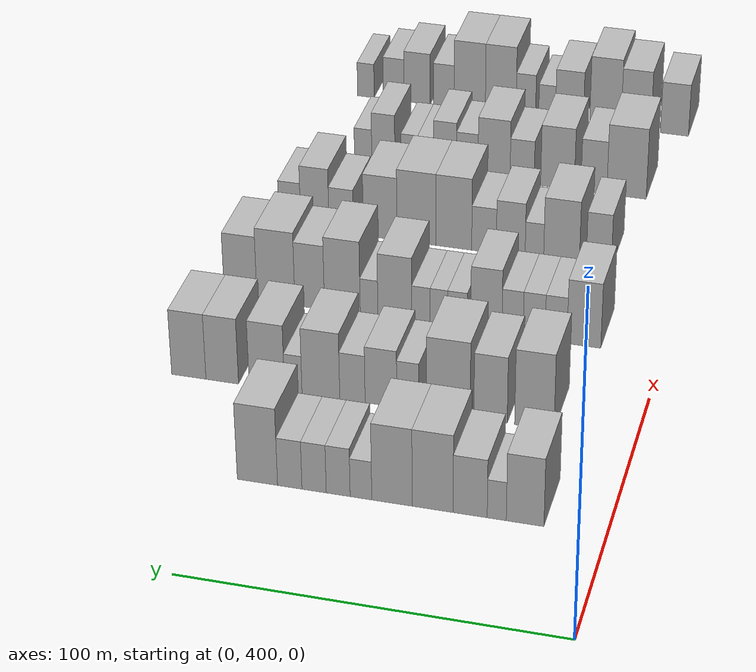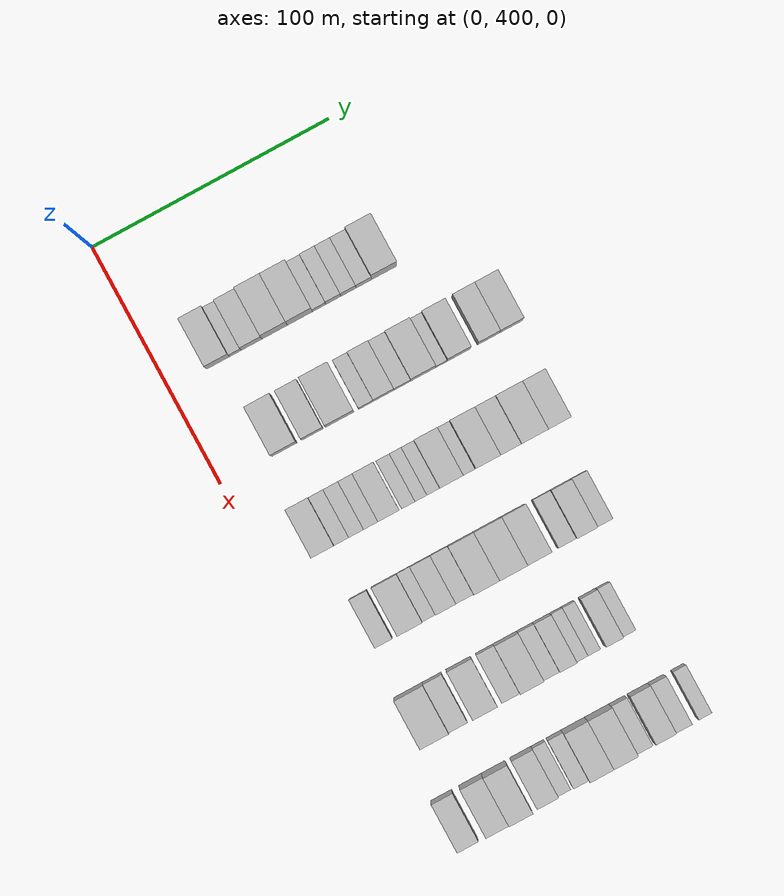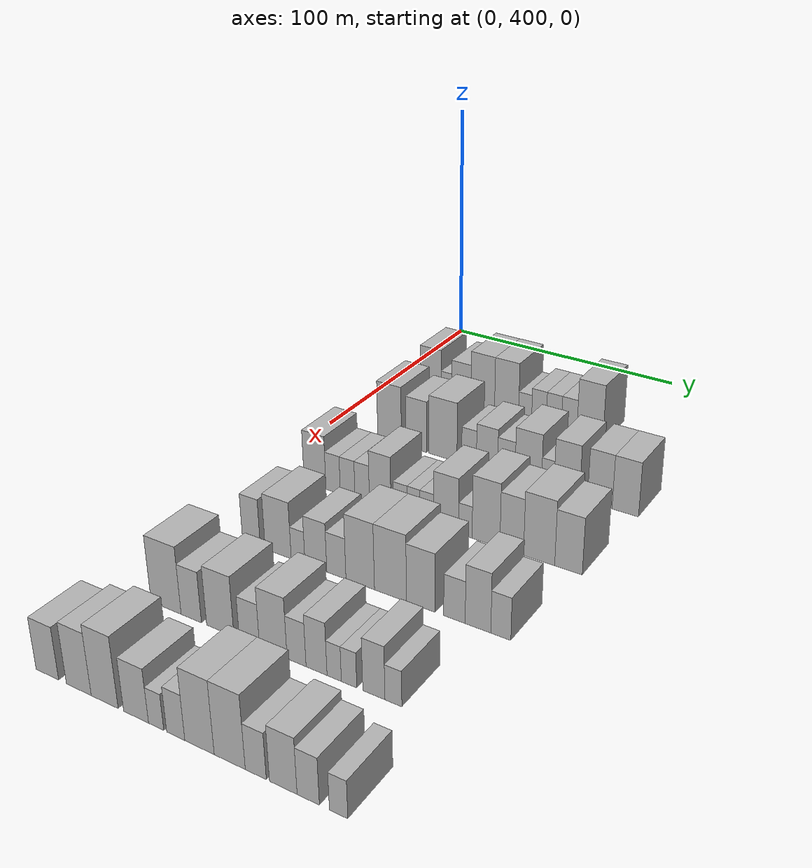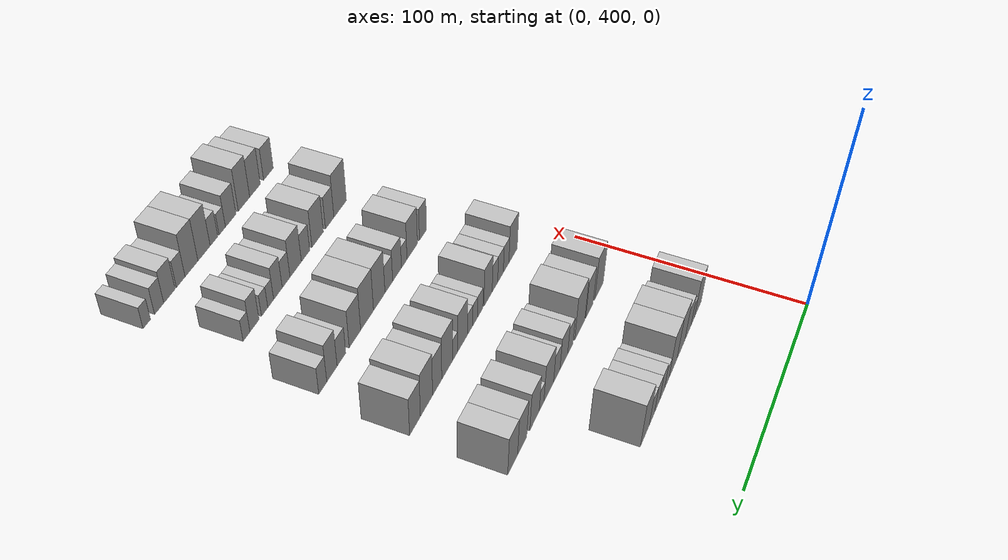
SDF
<sdf version="1.6">
 <world name="default">
  <model name="building_117">
   <static>1</static>
   <pose>50.0000 420.7810 0 0.000000 0.000000 0.000000</pose>
   <link name="link">
    <pose>0 0 10.50 0 0 0</pose>
    <collision name="collision"><geometry><box><size>20.0000 9.6259 21.0000</size></box></geometry></collision>
    <visual name="visual">
     <cast_shadows>0</cast_shadows>
     <geometry><box><size>20.0000 9.6259 21.0000</size></box></geometry>
     <material>
      <script>
       <uri>model://HANNAS_wall/materials/scripts</uri>
       <uri>model://HANNAS_wall/materials/textures</uri>
       <name>vrc/HANNAS_wall</name>
      </script>
     </material>
    </visual>
   </link>
  </model>
  <model name="building_118">
   <static>1</static>
   <pose>50.0000 428.0434 0 0.000000 0.000000 0.000000</pose>
   <link name="link">
    <pose>0 0 6.00 0 0 0</pose>
    <collision name="collision"><geometry><box><size>20.0000 4.8990 12.0000</size></box></geometry></collision>
    <visual name="visual">
     <cast_shadows>0</cast_shadows>
     <geometry><box><size>20.0000 4.8990 12.0000</size></box></geometry>
     <material>
      <script>
       <uri>model://HANNAS_wall/materials/scripts</uri>
       <uri>model://HANNAS_wall/materials/textures</uri>
       <name>vrc/HANNAS_wall</name>
      </script>
     </material>
    </visual>
   </link>
  </model>
  <model name="building_119">
   <static>1</static>
   <pose>50.0000 434.8783 0 0.000000 0.000000 0.000000</pose>
   <link name="link">
    <pose>0 0 9.00 0 0 0</pose>
    <collision name="collision"><geometry><box><size>20.0000 8.7708 18.0000</size></box></geometry></collision>
    <visual name="visual">
     <cast_shadows>0</cast_shadows>
     <geometry><box><size>20.0000 8.7708 18.0000</size></box></geometry>
     <material>
      <script>
       <uri>model://HANNAS_wall/materials/scripts</uri>
       <uri>model://HANNAS_wall/materials/textures</uri>
       <name>vrc/HANNAS_wall</name>
      </script>
     </material>
    </visual>
   </link>
  </model>
  <model name="building_120">
   <static>1</static>
   <pose>50.0000 444.5750 0 0.000000 0.000000 0.000000</pose>
   <link name="link">
    <pose>0 0 12.00 0 0 0</pose>
    <collision name="collision"><geometry><box><size>20.0000 10.6225 24.0000</size></box></geometry></collision>
    <visual name="visual">
     <cast_shadows>0</cast_shadows>
     <geometry><box><size>20.0000 10.6225 24.0000</size></box></geometry>
     <material>
      <script>
       <uri>model://HANNAS_wall/materials/scripts</uri>
       <uri>model://HANNAS_wall/materials/textures</uri>
       <name>vrc/HANNAS_wall</name>
      </script>
     </material>
    </visual>
   </link>
  </model>
  <model name="building_121">
   <static>1</static>
   <pose>50.0000 455.1604 0 0.000000 0.000000 0.000000</pose>
   <link name="link">
    <pose>0 0 12.00 0 0 0</pose>
    <collision name="collision"><geometry><box><size>20.0000 10.5483 24.0000</size></box></geometry></collision>
    <visual name="visual">
     <cast_shadows>0</cast_shadows>
     <geometry><box><size>20.0000 10.5483 24.0000</size></box></geometry>
     <material>
      <script>
       <uri>model://HANNAS_wall/materials/scripts</uri>
       <uri>model://HANNAS_wall/materials/textures</uri>
       <name>vrc/HANNAS_wall</name>
      </script>
     </material>
    </visual>
   </link>
  </model>
  <model name="building_122">
   <static>1</static>
   <pose>50.0000 463.2708 0 0.000000 0.000000 0.000000</pose>
   <link name="link">
    <pose>0 0 6.00 0 0 0</pose>
    <collision name="collision"><geometry><box><size>20.0000 5.6724 12.0000</size></box></geometry></collision>
    <visual name="visual">
     <cast_shadows>0</cast_shadows>
     <geometry><box><size>20.0000 5.6724 12.0000</size></box></geometry>
     <material>
      <script>
       <uri>model://HANNAS_wall/materials/scripts</uri>
       <uri>model://HANNAS_wall/materials/textures</uri>
       <name>vrc/HANNAS_wall</name>
      </script>
     </material>
    </visual>
   </link>
  </model>
  <model name="building_123">
   <static>1</static>
   <pose>50.0000 469.2484 0 0.000000 0.000000 0.000000</pose>
   <link name="link">
    <pose>0 0 7.50 0 0 0</pose>
    <collision name="collision"><geometry><box><size>20.0000 6.2827 15.0000</size></box></geometry></collision>
    <visual name="visual">
     <cast_shadows>0</cast_shadows>
     <geometry><box><size>20.0000 6.2827 15.0000</size></box></geometry>
     <material>
      <script>
       <uri>model://HANNAS_wall/materials/scripts</uri>
       <uri>model://HANNAS_wall/materials/textures</uri>
       <name>vrc/HANNAS_wall</name>
      </script>
     </material>
    </visual>
   </link>
  </model>
  <model name="building_124">
   <static>1</static>
   <pose>50.0000 475.5966 0 0.000000 0.000000 0.000000</pose>
   <link name="link">
    <pose>0 0 7.50 0 0 0</pose>
    <collision name="collision"><geometry><box><size>20.0000 6.4138 15.0000</size></box></geometry></collision>
    <visual name="visual">
     <cast_shadows>0</cast_shadows>
     <geometry><box><size>20.0000 6.4138 15.0000</size></box></geometry>
     <material>
      <script>
       <uri>model://HANNAS_wall/materials/scripts</uri>
       <uri>model://HANNAS_wall/materials/textures</uri>
       <name>vrc/HANNAS_wall</name>
      </script>
     </material>
    </visual>
   </link>
  </model>
  <model name="building_125">
   <static>1</static>
   <pose>50.0000 482.0374 0 0.000000 0.000000 0.000000</pose>
   <link name="link">
    <pose>0 0 7.50 0 0 0</pose>
    <collision name="collision"><geometry><box><size>20.0000 6.4678 15.0000</size></box></geometry></collision>
    <visual name="visual">
     <cast_shadows>0</cast_shadows>
     <geometry><box><size>20.0000 6.4678 15.0000</size></box></geometry>
     <material>
      <script>
       <uri>model://HANNAS_wall/materials/scripts</uri>
       <uri>model://HANNAS_wall/materials/textures</uri>
       <name>vrc/HANNAS_wall</name>
      </script>
     </material>
    </visual>
   </link>
  </model>
  <model name="building_126">
   <static>1</static>
   <pose>50.0000 490.6356 0 0.000000 0.000000 0.000000</pose>
   <link name="link">
    <pose>0 0 12.00 0 0 0</pose>
    <collision name="collision"><geometry><box><size>20.0000 10.7286 24.0000</size></box></geometry></collision>
    <visual name="visual">
     <cast_shadows>0</cast_shadows>
     <geometry><box><size>20.0000 10.7286 24.0000</size></box></geometry>
     <material>
      <script>
       <uri>model://HANNAS_wall/materials/scripts</uri>
       <uri>model://HANNAS_wall/materials/textures</uri>
       <name>vrc/HANNAS_wall</name>
      </script>
     </material>
    </visual>
   </link>
  </model>
  <model name="building_260">
   <static>1</static>
   <pose>90.0000 427.0427 0 0.000000 0.000000 0.000000</pose>
   <link name="link">
    <pose>0 0 12.00 0 0 0</pose>
    <collision name="collision"><geometry><box><size>20.0000 10.5757 24.0000</size></box></geometry></collision>
    <visual name="visual">
     <cast_shadows>0</cast_shadows>
     <geometry><box><size>20.0000 10.5757 24.0000</size></box></geometry>
     <material>
      <script>
       <uri>model://HANNAS_wall/materials/scripts</uri>
       <uri>model://HANNAS_wall/materials/textures</uri>
       <name>vrc/HANNAS_wall</name>
      </script>
     </material>
    </visual>
   </link>
  </model>
  <model name="building_261">
   <static>1</static>
   <pose>90.0000 438.8360 0 0.000000 0.000000 0.000000</pose>
   <link name="link">
    <pose>0 0 10.50 0 0 0</pose>
    <collision name="collision"><geometry><box><size>20.0000 9.0110 21.0000</size></box></geometry></collision>
    <visual name="visual">
     <cast_shadows>0</cast_shadows>
     <geometry><box><size>20.0000 9.0110 21.0000</size></box></geometry>
     <material>
      <script>
       <uri>model://HANNAS_wall/materials/scripts</uri>
       <uri>model://HANNAS_wall/materials/textures</uri>
       <name>vrc/HANNAS_wall</name>
      </script>
     </material>
    </visual>
   </link>
  </model>
  <model name="building_262">
   <static>1</static>
   <pose>90.0000 450.2954 0 0.000000 0.000000 0.000000</pose>
   <link name="link">
    <pose>0 0 12.00 0 0 0</pose>
    <collision name="collision"><geometry><box><size>20.0000 11.9078 24.0000</size></box></geometry></collision>
    <visual name="visual">
     <cast_shadows>0</cast_shadows>
     <geometry><box><size>20.0000 11.9078 24.0000</size></box></geometry>
     <material>
      <script>
       <uri>model://HANNAS_wall/materials/scripts</uri>
       <uri>model://HANNAS_wall/materials/textures</uri>
       <name>vrc/HANNAS_wall</name>
      </script>
     </material>
    </visual>
   </link>
  </model>
  <model name="building_263">
   <static>1</static>
   <pose>90.0000 461.2956 0 0.000000 0.000000 0.000000</pose>
   <link name="link">
    <pose>0 0 7.50 0 0 0</pose>
    <collision name="collision"><geometry><box><size>20.0000 6.0926 15.0000</size></box></geometry></collision>
    <visual name="visual">
     <cast_shadows>0</cast_shadows>
     <geometry><box><size>20.0000 6.0926 15.0000</size></box></geometry>
     <material>
      <script>
       <uri>model://HANNAS_wall/materials/scripts</uri>
       <uri>model://HANNAS_wall/materials/textures</uri>
       <name>vrc/HANNAS_wall</name>
      </script>
     </material>
    </visual>
   </link>
  </model>
  <model name="building_264">
   <static>1</static>
   <pose>90.0000 468.6936 0 0.000000 0.000000 0.000000</pose>
   <link name="link">
    <pose>0 0 9.00 0 0 0</pose>
    <collision name="collision"><geometry><box><size>20.0000 8.7034 18.0000</size></box></geometry></collision>
    <visual name="visual">
     <cast_shadows>0</cast_shadows>
     <geometry><box><size>20.0000 8.7034 18.0000</size></box></geometry>
     <material>
      <script>
       <uri>model://HANNAS_wall/materials/scripts</uri>
       <uri>model://HANNAS_wall/materials/textures</uri>
       <name>vrc/HANNAS_wall</name>
      </script>
     </material>
    </visual>
   </link>
  </model>
  <model name="building_265">
   <static>1</static>
   <pose>90.0000 476.5472 0 0.000000 0.000000 0.000000</pose>
   <link name="link">
    <pose>0 0 7.50 0 0 0</pose>
    <collision name="collision"><geometry><box><size>20.0000 7.0038 15.0000</size></box></geometry></collision>
    <visual name="visual">
     <cast_shadows>0</cast_shadows>
     <geometry><box><size>20.0000 7.0038 15.0000</size></box></geometry>
     <material>
      <script>
       <uri>model://HANNAS_wall/materials/scripts</uri>
       <uri>model://HANNAS_wall/materials/textures</uri>
       <name>vrc/HANNAS_wall</name>
      </script>
     </material>
    </visual>
   </link>
  </model>
  <model name="building_266">
   <static>1</static>
   <pose>90.0000 485.2889 0 0.000000 0.000000 0.000000</pose>
   <link name="link">
    <pose>0 0 10.50 0 0 0</pose>
    <collision name="collision"><geometry><box><size>20.0000 10.4795 21.0000</size></box></geometry></collision>
    <visual name="visual">
     <cast_shadows>0</cast_shadows>
     <geometry><box><size>20.0000 10.4795 21.0000</size></box></geometry>
     <material>
      <script>
       <uri>model://HANNAS_wall/materials/scripts</uri>
       <uri>model://HANNAS_wall/materials/textures</uri>
       <name>vrc/HANNAS_wall</name>
      </script>
     </material>
    </visual>
   </link>
  </model>
  <model name="building_267">
   <static>1</static>
   <pose>90.0000 492.9632 0 0.000000 0.000000 0.000000</pose>
   <link name="link">
    <pose>0 0 6.00 0 0 0</pose>
    <collision name="collision"><geometry><box><size>20.0000 4.8692 12.0000</size></box></geometry></collision>
    <visual name="visual">
     <cast_shadows>0</cast_shadows>
     <geometry><box><size>20.0000 4.8692 12.0000</size></box></geometry>
     <material>
      <script>
       <uri>model://HANNAS_wall/materials/scripts</uri>
       <uri>model://HANNAS_wall/materials/textures</uri>
       <name>vrc/HANNAS_wall</name>
      </script>
     </material>
    </visual>
   </link>
  </model>
  <model name="building_268">
   <static>1</static>
   <pose>90.0000 500.3362 0 0.000000 0.000000 0.000000</pose>
   <link name="link">
    <pose>0 0 10.50 0 0 0</pose>
    <collision name="collision"><geometry><box><size>20.0000 9.8768 21.0000</size></box></geometry></collision>
    <visual name="visual">
     <cast_shadows>0</cast_shadows>
     <geometry><box><size>20.0000 9.8768 21.0000</size></box></geometry>
     <material>
      <script>
       <uri>model://HANNAS_wall/materials/scripts</uri>
       <uri>model://HANNAS_wall/materials/textures</uri>
       <name>vrc/HANNAS_wall</name>
      </script>
     </material>
    </visual>
   </link>
  </model>
  <model name="building_269">
   <static>1</static>
   <pose>90.0000 512.8732 0 0.000000 0.000000 0.000000</pose>
   <link name="link">
    <pose>0 0 10.50 0 0 0</pose>
    <collision name="collision"><geometry><box><size>20.0000 9.1973 21.0000</size></box></geometry></collision>
    <visual name="visual">
     <cast_shadows>0</cast_shadows>
     <geometry><box><size>20.0000 9.1973 21.0000</size></box></geometry>
     <material>
      <script>
       <uri>model://HANNAS_wall/materials/scripts</uri>
       <uri>model://HANNAS_wall/materials/textures</uri>
       <name>vrc/HANNAS_wall</name>
      </script>
     </material>
    </visual>
   </link>
  </model>
  <model name="building_270">
   <static>1</static>
   <pose>90.0000 522.3245 0 0.000000 0.000000 0.000000</pose>
   <link name="link">
    <pose>0 0 10.50 0 0 0</pose>
    <collision name="collision"><geometry><box><size>20.0000 9.7052 21.0000</size></box></geometry></collision>
    <visual name="visual">
     <cast_shadows>0</cast_shadows>
     <geometry><box><size>20.0000 9.7052 21.0000</size></box></geometry>
     <material>
      <script>
       <uri>model://HANNAS_wall/materials/scripts</uri>
       <uri>model://HANNAS_wall/materials/textures</uri>
       <name>vrc/HANNAS_wall</name>
      </script>
     </material>
    </visual>
   </link>
  </model>
  <model name="building_394">
   <static>1</static>
   <pose>130.0000 421.7588 0 0.000000 0.000000 0.000000</pose>
   <link name="link">
    <pose>0 0 10.50 0 0 0</pose>
    <collision name="collision"><geometry><box><size>20.0000 9.4559 21.0000</size></box></geometry></collision>
    <visual name="visual">
     <cast_shadows>0</cast_shadows>
     <geometry><box><size>20.0000 9.4559 21.0000</size></box></geometry>
     <material>
      <script>
       <uri>model://HANNAS_wall/materials/scripts</uri>
       <uri>model://HANNAS_wall/materials/textures</uri>
       <name>vrc/HANNAS_wall</name>
      </script>
     </material>
    </visual>
   </link>
  </model>
  <model name="building_395">
   <static>1</static>
   <pose>130.0000 429.5590 0 0.000000 0.000000 0.000000</pose>
   <link name="link">
    <pose>0 0 7.50 0 0 0</pose>
    <collision name="collision"><geometry><box><size>20.0000 6.1446 15.0000</size></box></geometry></collision>
    <visual name="visual">
     <cast_shadows>0</cast_shadows>
     <geometry><box><size>20.0000 6.1446 15.0000</size></box></geometry>
     <material>
      <script>
       <uri>model://HANNAS_wall/materials/scripts</uri>
       <uri>model://HANNAS_wall/materials/textures</uri>
       <name>vrc/HANNAS_wall</name>
      </script>
     </material>
    </visual>
   </link>
  </model>
  <model name="building_396">
   <static>1</static>
   <pose>130.0000 435.7235 0 0.000000 0.000000 0.000000</pose>
   <link name="link">
    <pose>0 0 7.50 0 0 0</pose>
    <collision name="collision"><geometry><box><size>20.0000 6.1843 15.0000</size></box></geometry></collision>
    <visual name="visual">
     <cast_shadows>0</cast_shadows>
     <geometry><box><size>20.0000 6.1843 15.0000</size></box></geometry>
     <material>
      <script>
       <uri>model://HANNAS_wall/materials/scripts</uri>
       <uri>model://HANNAS_wall/materials/textures</uri>
       <name>vrc/HANNAS_wall</name>
      </script>
     </material>
    </visual>
   </link>
  </model>
  <model name="building_397">
   <static>1</static>
   <pose>130.0000 441.8187 0 0.000000 0.000000 0.000000</pose>
   <link name="link">
    <pose>0 0 7.50 0 0 0</pose>
    <collision name="collision"><geometry><box><size>20.0000 6.0060 15.0000</size></box></geometry></collision>
    <visual name="visual">
     <cast_shadows>0</cast_shadows>
     <geometry><box><size>20.0000 6.0060 15.0000</size></box></geometry>
     <material>
      <script>
       <uri>model://HANNAS_wall/materials/scripts</uri>
       <uri>model://HANNAS_wall/materials/textures</uri>
       <name>vrc/HANNAS_wall</name>
      </script>
     </material>
    </visual>
   </link>
  </model>
  <model name="building_398">
   <static>1</static>
   <pose>130.0000 449.2318 0 0.000000 0.000000 0.000000</pose>
   <link name="link">
    <pose>0 0 10.50 0 0 0</pose>
    <collision name="collision"><geometry><box><size>20.0000 8.8202 21.0000</size></box></geometry></collision>
    <visual name="visual">
     <cast_shadows>0</cast_shadows>
     <geometry><box><size>20.0000 8.8202 21.0000</size></box></geometry>
     <material>
      <script>
       <uri>model://HANNAS_wall/materials/scripts</uri>
       <uri>model://HANNAS_wall/materials/textures</uri>
       <name>vrc/HANNAS_wall</name>
      </script>
     </material>
    </visual>
   </link>
  </model>
  <model name="building_399">
   <static>1</static>
   <pose>130.0000 457.4462 0 0.000000 0.000000 0.000000</pose>
   <link name="link">
    <pose>0 0 6.00 0 0 0</pose>
    <collision name="collision"><geometry><box><size>20.0000 5.6087 12.0000</size></box></geometry></collision>
    <visual name="visual">
     <cast_shadows>0</cast_shadows>
     <geometry><box><size>20.0000 5.6087 12.0000</size></box></geometry>
     <material>
      <script>
       <uri>model://HANNAS_wall/materials/scripts</uri>
       <uri>model://HANNAS_wall/materials/textures</uri>
       <name>vrc/HANNAS_wall</name>
      </script>
     </material>
    </visual>
   </link>
  </model>
  <model name="building_400">
   <static>1</static>
   <pose>130.0000 462.7282 0 0.000000 0.000000 0.000000</pose>
   <link name="link">
    <pose>0 0 6.00 0 0 0</pose>
    <collision name="collision"><geometry><box><size>20.0000 4.9552 12.0000</size></box></geometry></collision>
    <visual name="visual">
     <cast_shadows>0</cast_shadows>
     <geometry><box><size>20.0000 4.9552 12.0000</size></box></geometry>
     <material>
      <script>
       <uri>model://HANNAS_wall/materials/scripts</uri>
       <uri>model://HANNAS_wall/materials/textures</uri>
       <name>vrc/HANNAS_wall</name>
      </script>
     </material>
    </visual>
   </link>
  </model>
  <model name="building_401">
   <static>1</static>
   <pose>130.0000 467.8478 0 0.000000 0.000000 0.000000</pose>
   <link name="link">
    <pose>0 0 6.00 0 0 0</pose>
    <collision name="collision"><geometry><box><size>20.0000 5.2841 12.0000</size></box></geometry></collision>
    <visual name="visual">
     <cast_shadows>0</cast_shadows>
     <geometry><box><size>20.0000 5.2841 12.0000</size></box></geometry>
     <material>
      <script>
       <uri>model://HANNAS_wall/materials/scripts</uri>
       <uri>model://HANNAS_wall/materials/textures</uri>
       <name>vrc/HANNAS_wall</name>
      </script>
     </material>
    </visual>
   </link>
  </model>
  <model name="building_402">
   <static>1</static>
   <pose>130.0000 475.3721 0 0.000000 0.000000 0.000000</pose>
   <link name="link">
    <pose>0 0 10.50 0 0 0</pose>
    <collision name="collision"><geometry><box><size>20.0000 9.7645 21.0000</size></box></geometry></collision>
    <visual name="visual">
     <cast_shadows>0</cast_shadows>
     <geometry><box><size>20.0000 9.7645 21.0000</size></box></geometry>
     <material>
      <script>
       <uri>model://HANNAS_wall/materials/scripts</uri>
       <uri>model://HANNAS_wall/materials/textures</uri>
       <name>vrc/HANNAS_wall</name>
      </script>
     </material>
    </visual>
   </link>
  </model>
  <model name="building_403">
   <static>1</static>
   <pose>130.0000 482.7966 0 0.000000 0.000000 0.000000</pose>
   <link name="link">
    <pose>0 0 6.00 0 0 0</pose>
    <collision name="collision"><geometry><box><size>20.0000 5.0845 12.0000</size></box></geometry></collision>
    <visual name="visual">
     <cast_shadows>0</cast_shadows>
     <geometry><box><size>20.0000 5.0845 12.0000</size></box></geometry>
     <material>
      <script>
       <uri>model://HANNAS_wall/materials/scripts</uri>
       <uri>model://HANNAS_wall/materials/textures</uri>
       <name>vrc/HANNAS_wall</name>
      </script>
     </material>
    </visual>
   </link>
  </model>
  <model name="building_404">
   <static>1</static>
   <pose>130.0000 490.5154 0 0.000000 0.000000 0.000000</pose>
   <link name="link">
    <pose>0 0 12.00 0 0 0</pose>
    <collision name="collision"><geometry><box><size>20.0000 10.3531 24.0000</size></box></geometry></collision>
    <visual name="visual">
     <cast_shadows>0</cast_shadows>
     <geometry><box><size>20.0000 10.3531 24.0000</size></box></geometry>
     <material>
      <script>
       <uri>model://HANNAS_wall/materials/scripts</uri>
       <uri>model://HANNAS_wall/materials/textures</uri>
       <name>vrc/HANNAS_wall</name>
      </script>
     </material>
    </visual>
   </link>
  </model>
  <model name="building_405">
   <static>1</static>
   <pose>130.0000 500.0058 0 0.000000 0.000000 0.000000</pose>
   <link name="link">
    <pose>0 0 10.50 0 0 0</pose>
    <collision name="collision"><geometry><box><size>20.0000 8.6278 21.0000</size></box></geometry></collision>
    <visual name="visual">
     <cast_shadows>0</cast_shadows>
     <geometry><box><size>20.0000 8.6278 21.0000</size></box></geometry>
     <material>
      <script>
       <uri>model://HANNAS_wall/materials/scripts</uri>
       <uri>model://HANNAS_wall/materials/textures</uri>
       <name>vrc/HANNAS_wall</name>
      </script>
     </material>
    </visual>
   </link>
  </model>
  <model name="building_406">
   <static>1</static>
   <pose>130.0000 509.8866 0 0.000000 0.000000 0.000000</pose>
   <link name="link">
    <pose>0 0 12.00 0 0 0</pose>
    <collision name="collision"><geometry><box><size>20.0000 11.1340 24.0000</size></box></geometry></collision>
    <visual name="visual">
     <cast_shadows>0</cast_shadows>
     <geometry><box><size>20.0000 11.1340 24.0000</size></box></geometry>
     <material>
      <script>
       <uri>model://HANNAS_wall/materials/scripts</uri>
       <uri>model://HANNAS_wall/materials/textures</uri>
       <name>vrc/HANNAS_wall</name>
      </script>
     </material>
    </visual>
   </link>
  </model>
  <model name="building_407">
   <static>1</static>
   <pose>130.0000 520.2635 0 0.000000 0.000000 0.000000</pose>
   <link name="link">
    <pose>0 0 10.50 0 0 0</pose>
    <collision name="collision"><geometry><box><size>20.0000 9.6197 21.0000</size></box></geometry></collision>
    <visual name="visual">
     <cast_shadows>0</cast_shadows>
     <geometry><box><size>20.0000 9.6197 21.0000</size></box></geometry>
     <material>
      <script>
       <uri>model://HANNAS_wall/materials/scripts</uri>
       <uri>model://HANNAS_wall/materials/textures</uri>
       <name>vrc/HANNAS_wall</name>
      </script>
     </material>
    </visual>
   </link>
  </model>
  <model name="building_533">
   <static>1</static>
   <pose>170.0000 425.3895 0 0.000000 0.000000 0.000000</pose>
   <link name="link">
    <pose>0 0 9.00 0 0 0</pose>
    <collision name="collision"><geometry><box><size>20.0000 7.3144 18.0000</size></box></geometry></collision>
    <visual name="visual">
     <cast_shadows>0</cast_shadows>
     <geometry><box><size>20.0000 7.3144 18.0000</size></box></geometry>
     <material>
      <script>
       <uri>model://HANNAS_wall/materials/scripts</uri>
       <uri>model://HANNAS_wall/materials/textures</uri>
       <name>vrc/HANNAS_wall</name>
      </script>
     </material>
    </visual>
   </link>
  </model>
  <model name="building_534">
   <static>1</static>
   <pose>170.0000 436.2900 0 0.000000 0.000000 0.000000</pose>
   <link name="link">
    <pose>0 0 10.50 0 0 0</pose>
    <collision name="collision"><geometry><box><size>20.0000 10.4865 21.0000</size></box></geometry></collision>
    <visual name="visual">
     <cast_shadows>0</cast_shadows>
     <geometry><box><size>20.0000 10.4865 21.0000</size></box></geometry>
     <material>
      <script>
       <uri>model://HANNAS_wall/materials/scripts</uri>
       <uri>model://HANNAS_wall/materials/textures</uri>
       <name>vrc/HANNAS_wall</name>
      </script>
     </material>
    </visual>
   </link>
  </model>
  <model name="building_535">
   <static>1</static>
   <pose>170.0000 444.2693 0 0.000000 0.000000 0.000000</pose>
   <link name="link">
    <pose>0 0 6.00 0 0 0</pose>
    <collision name="collision"><geometry><box><size>20.0000 5.4722 12.0000</size></box></geometry></collision>
    <visual name="visual">
     <cast_shadows>0</cast_shadows>
     <geometry><box><size>20.0000 5.4722 12.0000</size></box></geometry>
     <material>
      <script>
       <uri>model://HANNAS_wall/materials/scripts</uri>
       <uri>model://HANNAS_wall/materials/textures</uri>
       <name>vrc/HANNAS_wall</name>
      </script>
     </material>
    </visual>
   </link>
  </model>
  <model name="building_536">
   <static>1</static>
   <pose>170.0000 451.2619 0 0.000000 0.000000 0.000000</pose>
   <link name="link">
    <pose>0 0 9.00 0 0 0</pose>
    <collision name="collision"><geometry><box><size>20.0000 8.5131 18.0000</size></box></geometry></collision>
    <visual name="visual">
     <cast_shadows>0</cast_shadows>
     <geometry><box><size>20.0000 8.5131 18.0000</size></box></geometry>
     <material>
      <script>
       <uri>model://HANNAS_wall/materials/scripts</uri>
       <uri>model://HANNAS_wall/materials/textures</uri>
       <name>vrc/HANNAS_wall</name>
      </script>
     </material>
    </visual>
   </link>
  </model>
  <model name="building_537">
   <static>1</static>
   <pose>170.0000 459.1687 0 0.000000 0.000000 0.000000</pose>
   <link name="link">
    <pose>0 0 7.50 0 0 0</pose>
    <collision name="collision"><geometry><box><size>20.0000 7.3004 15.0000</size></box></geometry></collision>
    <visual name="visual">
     <cast_shadows>0</cast_shadows>
     <geometry><box><size>20.0000 7.3004 15.0000</size></box></geometry>
     <material>
      <script>
       <uri>model://HANNAS_wall/materials/scripts</uri>
       <uri>model://HANNAS_wall/materials/textures</uri>
       <name>vrc/HANNAS_wall</name>
      </script>
     </material>
    </visual>
   </link>
  </model>
  <model name="building_538">
   <static>1</static>
   <pose>170.0000 468.1682 0 0.000000 0.000000 0.000000</pose>
   <link name="link">
    <pose>0 0 12.00 0 0 0</pose>
    <collision name="collision"><geometry><box><size>20.0000 10.6986 24.0000</size></box></geometry></collision>
    <visual name="visual">
     <cast_shadows>0</cast_shadows>
     <geometry><box><size>20.0000 10.6986 24.0000</size></box></geometry>
     <material>
      <script>
       <uri>model://HANNAS_wall/materials/scripts</uri>
       <uri>model://HANNAS_wall/materials/textures</uri>
       <name>vrc/HANNAS_wall</name>
      </script>
     </material>
    </visual>
   </link>
  </model>
  <model name="building_539">
   <static>1</static>
   <pose>170.0000 479.3540 0 0.000000 0.000000 0.000000</pose>
   <link name="link">
    <pose>0 0 12.00 0 0 0</pose>
    <collision name="collision"><geometry><box><size>20.0000 11.6731 24.0000</size></box></geometry></collision>
    <visual name="visual">
     <cast_shadows>0</cast_shadows>
     <geometry><box><size>20.0000 11.6731 24.0000</size></box></geometry>
     <material>
      <script>
       <uri>model://HANNAS_wall/materials/scripts</uri>
       <uri>model://HANNAS_wall/materials/textures</uri>
       <name>vrc/HANNAS_wall</name>
      </script>
     </material>
    </visual>
   </link>
  </model>
  <model name="building_540">
   <static>1</static>
   <pose>170.0000 490.2613 0 0.000000 0.000000 0.000000</pose>
   <link name="link">
    <pose>0 0 10.50 0 0 0</pose>
    <collision name="collision"><geometry><box><size>20.0000 10.1414 21.0000</size></box></geometry></collision>
    <visual name="visual">
     <cast_shadows>0</cast_shadows>
     <geometry><box><size>20.0000 10.1414 21.0000</size></box></geometry>
     <material>
      <script>
       <uri>model://HANNAS_wall/materials/scripts</uri>
       <uri>model://HANNAS_wall/materials/textures</uri>
       <name>vrc/HANNAS_wall</name>
      </script>
     </material>
    </visual>
   </link>
  </model>
  <model name="building_541">
   <static>1</static>
   <pose>170.0000 502.0347 0 0.000000 0.000000 0.000000</pose>
   <link name="link">
    <pose>0 0 7.50 0 0 0</pose>
    <collision name="collision"><geometry><box><size>20.0000 7.4055 15.0000</size></box></geometry></collision>
    <visual name="visual">
     <cast_shadows>0</cast_shadows>
     <geometry><box><size>20.0000 7.4055 15.0000</size></box></geometry>
     <material>
      <script>
       <uri>model://HANNAS_wall/materials/scripts</uri>
       <uri>model://HANNAS_wall/materials/textures</uri>
       <name>vrc/HANNAS_wall</name>
      </script>
     </material>
    </visual>
   </link>
  </model>
  <model name="building_542">
   <static>1</static>
   <pose>170.0000 510.0636 0 0.000000 0.000000 0.000000</pose>
   <link name="link">
    <pose>0 0 10.50 0 0 0</pose>
    <collision name="collision"><geometry><box><size>20.0000 8.6522 21.0000</size></box></geometry></collision>
    <visual name="visual">
     <cast_shadows>0</cast_shadows>
     <geometry><box><size>20.0000 8.6522 21.0000</size></box></geometry>
     <material>
      <script>
       <uri>model://HANNAS_wall/materials/scripts</uri>
       <uri>model://HANNAS_wall/materials/textures</uri>
       <name>vrc/HANNAS_wall</name>
      </script>
     </material>
    </visual>
   </link>
  </model>
  <model name="building_543">
   <static>1</static>
   <pose>170.0000 517.7016 0 0.000000 0.000000 0.000000</pose>
   <link name="link">
    <pose>0 0 7.50 0 0 0</pose>
    <collision name="collision"><geometry><box><size>20.0000 6.6239 15.0000</size></box></geometry></collision>
    <visual name="visual">
     <cast_shadows>0</cast_shadows>
     <geometry><box><size>20.0000 6.6239 15.0000</size></box></geometry>
     <material>
      <script>
       <uri>model://HANNAS_wall/materials/scripts</uri>
       <uri>model://HANNAS_wall/materials/textures</uri>
       <name>vrc/HANNAS_wall</name>
      </script>
     </material>
    </visual>
   </link>
  </model>
  <model name="building_672">
   <static>1</static>
   <pose>210.0000 424.7178 0 0.000000 0.000000 0.000000</pose>
   <link name="link">
    <pose>0 0 12.00 0 0 0</pose>
    <collision name="collision"><geometry><box><size>20.0000 11.9690 24.0000</size></box></geometry></collision>
    <visual name="visual">
     <cast_shadows>0</cast_shadows>
     <geometry><box><size>20.0000 11.9690 24.0000</size></box></geometry>
     <material>
      <script>
       <uri>model://HANNAS_wall/materials/scripts</uri>
       <uri>model://HANNAS_wall/materials/textures</uri>
       <name>vrc/HANNAS_wall</name>
      </script>
     </material>
    </visual>
   </link>
  </model>
  <model name="building_673">
   <static>1</static>
   <pose>210.0000 434.6555 0 0.000000 0.000000 0.000000</pose>
   <link name="link">
    <pose>0 0 9.00 0 0 0</pose>
    <collision name="collision"><geometry><box><size>20.0000 7.9062 18.0000</size></box></geometry></collision>
    <visual name="visual">
     <cast_shadows>0</cast_shadows>
     <geometry><box><size>20.0000 7.9062 18.0000</size></box></geometry>
     <material>
      <script>
       <uri>model://HANNAS_wall/materials/scripts</uri>
       <uri>model://HANNAS_wall/materials/textures</uri>
       <name>vrc/HANNAS_wall</name>
      </script>
     </material>
    </visual>
   </link>
  </model>
  <model name="building_674">
   <static>1</static>
   <pose>210.0000 445.7793 0 0.000000 0.000000 0.000000</pose>
   <link name="link">
    <pose>0 0 10.50 0 0 0</pose>
    <collision name="collision"><geometry><box><size>20.0000 10.3413 21.0000</size></box></geometry></collision>
    <visual name="visual">
     <cast_shadows>0</cast_shadows>
     <geometry><box><size>20.0000 10.3413 21.0000</size></box></geometry>
     <material>
      <script>
       <uri>model://HANNAS_wall/materials/scripts</uri>
       <uri>model://HANNAS_wall/materials/textures</uri>
       <name>vrc/HANNAS_wall</name>
      </script>
     </material>
    </visual>
   </link>
  </model>
  <model name="building_675">
   <static>1</static>
   <pose>210.0000 456.6695 0 0.000000 0.000000 0.000000</pose>
   <link name="link">
    <pose>0 0 7.50 0 0 0</pose>
    <collision name="collision"><geometry><box><size>20.0000 7.4391 15.0000</size></box></geometry></collision>
    <visual name="visual">
     <cast_shadows>0</cast_shadows>
     <geometry><box><size>20.0000 7.4391 15.0000</size></box></geometry>
     <material>
      <script>
       <uri>model://HANNAS_wall/materials/scripts</uri>
       <uri>model://HANNAS_wall/materials/textures</uri>
       <name>vrc/HANNAS_wall</name>
      </script>
     </material>
    </visual>
   </link>
  </model>
  <model name="building_676">
   <static>1</static>
   <pose>210.0000 465.3481 0 0.000000 0.000000 0.000000</pose>
   <link name="link">
    <pose>0 0 10.50 0 0 0</pose>
    <collision name="collision"><geometry><box><size>20.0000 9.9180 21.0000</size></box></geometry></collision>
    <visual name="visual">
     <cast_shadows>0</cast_shadows>
     <geometry><box><size>20.0000 9.9180 21.0000</size></box></geometry>
     <material>
      <script>
       <uri>model://HANNAS_wall/materials/scripts</uri>
       <uri>model://HANNAS_wall/materials/textures</uri>
       <name>vrc/HANNAS_wall</name>
      </script>
     </material>
    </visual>
   </link>
  </model>
  <model name="building_677">
   <static>1</static>
   <pose>210.0000 473.6435 0 0.000000 0.000000 0.000000</pose>
   <link name="link">
    <pose>0 0 7.50 0 0 0</pose>
    <collision name="collision"><geometry><box><size>20.0000 6.6729 15.0000</size></box></geometry></collision>
    <visual name="visual">
     <cast_shadows>0</cast_shadows>
     <geometry><box><size>20.0000 6.6729 15.0000</size></box></geometry>
     <material>
      <script>
       <uri>model://HANNAS_wall/materials/scripts</uri>
       <uri>model://HANNAS_wall/materials/textures</uri>
       <name>vrc/HANNAS_wall</name>
      </script>
     </material>
    </visual>
   </link>
  </model>
  <model name="building_678">
   <static>1</static>
   <pose>210.0000 480.6047 0 0.000000 0.000000 0.000000</pose>
   <link name="link">
    <pose>0 0 9.00 0 0 0</pose>
    <collision name="collision"><geometry><box><size>20.0000 7.2494 18.0000</size></box></geometry></collision>
    <visual name="visual">
     <cast_shadows>0</cast_shadows>
     <geometry><box><size>20.0000 7.2494 18.0000</size></box></geometry>
     <material>
      <script>
       <uri>model://HANNAS_wall/materials/scripts</uri>
       <uri>model://HANNAS_wall/materials/textures</uri>
       <name>vrc/HANNAS_wall</name>
      </script>
     </material>
    </visual>
   </link>
  </model>
  <model name="building_679">
   <static>1</static>
   <pose>210.0000 486.6684 0 0.000000 0.000000 0.000000</pose>
   <link name="link">
    <pose>0 0 6.00 0 0 0</pose>
    <collision name="collision"><geometry><box><size>20.0000 4.8782 12.0000</size></box></geometry></collision>
    <visual name="visual">
     <cast_shadows>0</cast_shadows>
     <geometry><box><size>20.0000 4.8782 12.0000</size></box></geometry>
     <material>
      <script>
       <uri>model://HANNAS_wall/materials/scripts</uri>
       <uri>model://HANNAS_wall/materials/textures</uri>
       <name>vrc/HANNAS_wall</name>
      </script>
     </material>
    </visual>
   </link>
  </model>
  <model name="building_680">
   <static>1</static>
   <pose>210.0000 491.6951 0 0.000000 0.000000 0.000000</pose>
   <link name="link">
    <pose>0 0 6.00 0 0 0</pose>
    <collision name="collision"><geometry><box><size>20.0000 5.1752 12.0000</size></box></geometry></collision>
    <visual name="visual">
     <cast_shadows>0</cast_shadows>
     <geometry><box><size>20.0000 5.1752 12.0000</size></box></geometry>
     <material>
      <script>
       <uri>model://HANNAS_wall/materials/scripts</uri>
       <uri>model://HANNAS_wall/materials/textures</uri>
       <name>vrc/HANNAS_wall</name>
      </script>
     </material>
    </visual>
   </link>
  </model>
  <model name="building_681">
   <static>1</static>
   <pose>210.0000 499.9211 0 0.000000 0.000000 0.000000</pose>
   <link name="link">
    <pose>0 0 9.00 0 0 0</pose>
    <collision name="collision"><geometry><box><size>20.0000 7.2769 18.0000</size></box></geometry></collision>
    <visual name="visual">
     <cast_shadows>0</cast_shadows>
     <geometry><box><size>20.0000 7.2769 18.0000</size></box></geometry>
     <material>
      <script>
       <uri>model://HANNAS_wall/materials/scripts</uri>
       <uri>model://HANNAS_wall/materials/textures</uri>
       <name>vrc/HANNAS_wall</name>
      </script>
     </material>
    </visual>
   </link>
  </model>
  <model name="building_682">
   <static>1</static>
   <pose>210.0000 506.2853 0 0.000000 0.000000 0.000000</pose>
   <link name="link">
    <pose>0 0 6.00 0 0 0</pose>
    <collision name="collision"><geometry><box><size>20.0000 5.4514 12.0000</size></box></geometry></collision>
    <visual name="visual">
     <cast_shadows>0</cast_shadows>
     <geometry><box><size>20.0000 5.4514 12.0000</size></box></geometry>
     <material>
      <script>
       <uri>model://HANNAS_wall/materials/scripts</uri>
       <uri>model://HANNAS_wall/materials/textures</uri>
       <name>vrc/HANNAS_wall</name>
      </script>
     </material>
    </visual>
   </link>
  </model>
  <model name="building_808">
   <static>1</static>
   <pose>250.0000 416.9896 0 0.000000 0.000000 0.000000</pose>
   <link name="link">
    <pose>0 0 9.00 0 0 0</pose>
    <collision name="collision"><geometry><box><size>20.0000 8.8375 18.0000</size></box></geometry></collision>
    <visual name="visual">
     <cast_shadows>0</cast_shadows>
     <geometry><box><size>20.0000 8.8375 18.0000</size></box></geometry>
     <material>
      <script>
       <uri>model://HANNAS_wall/materials/scripts</uri>
       <uri>model://HANNAS_wall/materials/textures</uri>
       <name>vrc/HANNAS_wall</name>
      </script>
     </material>
    </visual>
   </link>
  </model>
  <model name="building_809">
   <static>1</static>
   <pose>250.0000 429.1289 0 0.000000 0.000000 0.000000</pose>
   <link name="link">
    <pose>0 0 10.50 0 0 0</pose>
    <collision name="collision"><geometry><box><size>20.0000 9.4410 21.0000</size></box></geometry></collision>
    <visual name="visual">
     <cast_shadows>0</cast_shadows>
     <geometry><box><size>20.0000 9.4410 21.0000</size></box></geometry>
     <material>
      <script>
       <uri>model://HANNAS_wall/materials/scripts</uri>
       <uri>model://HANNAS_wall/materials/textures</uri>
       <name>vrc/HANNAS_wall</name>
      </script>
     </material>
    </visual>
   </link>
  </model>
  <model name="building_810">
   <static>1</static>
   <pose>250.0000 438.8364 0 0.000000 0.000000 0.000000</pose>
   <link name="link">
    <pose>0 0 12.00 0 0 0</pose>
    <collision name="collision"><geometry><box><size>20.0000 9.9741 24.0000</size></box></geometry></collision>
    <visual name="visual">
     <cast_shadows>0</cast_shadows>
     <geometry><box><size>20.0000 9.9741 24.0000</size></box></geometry>
     <material>
      <script>
       <uri>model://HANNAS_wall/materials/scripts</uri>
       <uri>model://HANNAS_wall/materials/textures</uri>
       <name>vrc/HANNAS_wall</name>
      </script>
     </material>
    </visual>
   </link>
  </model>
  <model name="building_811">
   <static>1</static>
   <pose>250.0000 450.2823 0 0.000000 0.000000 0.000000</pose>
   <link name="link">
    <pose>0 0 9.00 0 0 0</pose>
    <collision name="collision"><geometry><box><size>20.0000 8.9177 18.0000</size></box></geometry></collision>
    <visual name="visual">
     <cast_shadows>0</cast_shadows>
     <geometry><box><size>20.0000 8.9177 18.0000</size></box></geometry>
     <material>
      <script>
       <uri>model://HANNAS_wall/materials/scripts</uri>
       <uri>model://HANNAS_wall/materials/textures</uri>
       <name>vrc/HANNAS_wall</name>
      </script>
     </material>
    </visual>
   </link>
  </model>
  <model name="building_812">
   <static>1</static>
   <pose>250.0000 457.4272 0 0.000000 0.000000 0.000000</pose>
   <link name="link">
    <pose>0 0 6.00 0 0 0</pose>
    <collision name="collision"><geometry><box><size>20.0000 5.3721 12.0000</size></box></geometry></collision>
    <visual name="visual">
     <cast_shadows>0</cast_shadows>
     <geometry><box><size>20.0000 5.3721 12.0000</size></box></geometry>
     <material>
      <script>
       <uri>model://HANNAS_wall/materials/scripts</uri>
       <uri>model://HANNAS_wall/materials/textures</uri>
       <name>vrc/HANNAS_wall</name>
      </script>
     </material>
    </visual>
   </link>
  </model>
  <model name="building_813">
   <static>1</static>
   <pose>250.0000 464.2545 0 0.000000 0.000000 0.000000</pose>
   <link name="link">
    <pose>0 0 7.50 0 0 0</pose>
    <collision name="collision"><geometry><box><size>20.0000 6.2824 15.0000</size></box></geometry></collision>
    <visual name="visual">
     <cast_shadows>0</cast_shadows>
     <geometry><box><size>20.0000 6.2824 15.0000</size></box></geometry>
     <material>
      <script>
       <uri>model://HANNAS_wall/materials/scripts</uri>
       <uri>model://HANNAS_wall/materials/textures</uri>
       <name>vrc/HANNAS_wall</name>
      </script>
     </material>
    </visual>
   </link>
  </model>
  <model name="building_814">
   <static>1</static>
   <pose>250.0000 472.3413 0 0.000000 0.000000 0.000000</pose>
   <link name="link">
    <pose>0 0 12.00 0 0 0</pose>
    <collision name="collision"><geometry><box><size>20.0000 9.8912 24.0000</size></box></geometry></collision>
    <visual name="visual">
     <cast_shadows>0</cast_shadows>
     <geometry><box><size>20.0000 9.8912 24.0000</size></box></geometry>
     <material>
      <script>
       <uri>model://HANNAS_wall/materials/scripts</uri>
       <uri>model://HANNAS_wall/materials/textures</uri>
       <name>vrc/HANNAS_wall</name>
      </script>
     </material>
    </visual>
   </link>
  </model>
  <model name="building_815">
   <static>1</static>
   <pose>250.0000 482.3756 0 0.000000 0.000000 0.000000</pose>
   <link name="link">
    <pose>0 0 12.00 0 0 0</pose>
    <collision name="collision"><geometry><box><size>20.0000 10.1775 24.0000</size></box></geometry></collision>
    <visual name="visual">
     <cast_shadows>0</cast_shadows>
     <geometry><box><size>20.0000 10.1775 24.0000</size></box></geometry>
     <material>
      <script>
       <uri>model://HANNAS_wall/materials/scripts</uri>
       <uri>model://HANNAS_wall/materials/textures</uri>
       <name>vrc/HANNAS_wall</name>
      </script>
     </material>
    </visual>
   </link>
  </model>
  <model name="building_816">
   <static>1</static>
   <pose>250.0000 490.8285 0 0.000000 0.000000 0.000000</pose>
   <link name="link">
    <pose>0 0 7.50 0 0 0</pose>
    <collision name="collision"><geometry><box><size>20.0000 6.7283 15.0000</size></box></geometry></collision>
    <visual name="visual">
     <cast_shadows>0</cast_shadows>
     <geometry><box><size>20.0000 6.7283 15.0000</size></box></geometry>
     <material>
      <script>
       <uri>model://HANNAS_wall/materials/scripts</uri>
       <uri>model://HANNAS_wall/materials/textures</uri>
       <name>vrc/HANNAS_wall</name>
      </script>
     </material>
    </visual>
   </link>
  </model>
  <model name="building_817">
   <static>1</static>
   <pose>250.0000 499.4901 0 0.000000 0.000000 0.000000</pose>
   <link name="link">
    <pose>0 0 9.00 0 0 0</pose>
    <collision name="collision"><geometry><box><size>20.0000 8.5950 18.0000</size></box></geometry></collision>
    <visual name="visual">
     <cast_shadows>0</cast_shadows>
     <geometry><box><size>20.0000 8.5950 18.0000</size></box></geometry>
     <material>
      <script>
       <uri>model://HANNAS_wall/materials/scripts</uri>
       <uri>model://HANNAS_wall/materials/textures</uri>
       <name>vrc/HANNAS_wall</name>
      </script>
     </material>
    </visual>
   </link>
  </model>
  <model name="building_818">
   <static>1</static>
   <pose>250.0000 507.1842 0 0.000000 0.000000 0.000000</pose>
   <link name="link">
    <pose>0 0 7.50 0 0 0</pose>
    <collision name="collision"><geometry><box><size>20.0000 6.7931 15.0000</size></box></geometry></collision>
    <visual name="visual">
     <cast_shadows>0</cast_shadows>
     <geometry><box><size>20.0000 6.7931 15.0000</size></box></geometry>
     <material>
      <script>
       <uri>model://HANNAS_wall/materials/scripts</uri>
       <uri>model://HANNAS_wall/materials/textures</uri>
       <name>vrc/HANNAS_wall</name>
      </script>
     </material>
    </visual>
   </link>
  </model>
  <model name="building_819">
   <static>1</static>
   <pose>250.0000 516.3106 0 0.000000 0.000000 0.000000</pose>
   <link name="link">
    <pose>0 0 6.00 0 0 0</pose>
    <collision name="collision"><geometry><box><size>20.0000 5.4597 12.0000</size></box></geometry></collision>
    <visual name="visual">
     <cast_shadows>0</cast_shadows>
     <geometry><box><size>20.0000 5.4597 12.0000</size></box></geometry>
     <material>
      <script>
       <uri>model://HANNAS_wall/materials/scripts</uri>
       <uri>model://HANNAS_wall/materials/textures</uri>
       <name>vrc/HANNAS_wall</name>
      </script>
     </material>
    </visual>
   </link>
  </model>
 </world>
</sdf>
